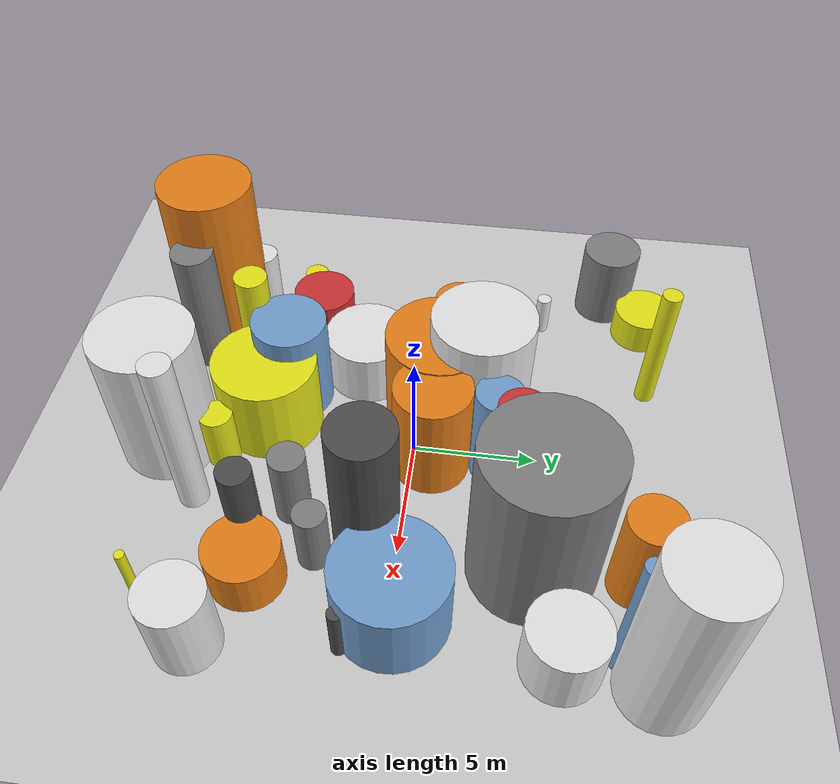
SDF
<?xml version='1.0'?>
<sdf version='1.6'>
  <world name='default'>
    <!-- Sun light -->
    <light name='sun' type='directional'>
      <cast_shadows>1</cast_shadows>
      <pose>0 0 10 0 0 0</pose>
      <diffuse>0.8 0.8 0.8 1</diffuse>
      <specular>0.2 0.2 0.2 1</specular>
      <attenuation>
        <range>1000</range>
        <constant>0.9</constant>
        <linear>0.01</linear>
        <quadratic>0.001</quadratic>
      </attenuation>
      <direction>-0.5 0.1 -0.9</direction>
    </light>

    <!-- Ground plane -->
    <model name='ground_plane'>
      <static>1</static>
      <link name='link'>
        <collision name='collision'>
          <geometry>
            <plane>
              <normal>0 0 1</normal>
              <size>100 100</size>
            </plane>
          </geometry>
          <surface>
            <contact>
              <collide_bitmask>65535</collide_bitmask>
              <ode/>
            </contact>
            <friction>
              <ode>
                <mu>100</mu>
                <mu2>50</mu2>
              </ode>
              <torsional><ode/></torsional>
            </friction>
            <bounce/>
          </surface>
          <max_contacts>10</max_contacts>
        </collision>
        <visual name='visual'>
          <cast_shadows>0</cast_shadows>
          <geometry>
            <plane>
              <normal>0 0 1</normal>
              <size>100 100</size>
            </plane>
          </geometry>
          <material>
            <script>
              <uri>file://media/materials/scripts/gazebo.material</uri>
              <n>Gazebo/Grey</n>
            </script>
          </material>
        </visual>
      </link>
    </model>

    <!-- Environment -->
    <magnetic_field>6e-06 2.3e-05 -4.2e-05</magnetic_field>
    <atmosphere type='adiabatic'/>
    <physics name='default_physics' default='0' type='ode'>
      <gravity>0 0 -9.8</gravity>
      <max_step_size>0.004</max_step_size>
      <real_time_factor>1</real_time_factor>
      <real_time_update_rate>250</real_time_update_rate>
    </physics>
    <scene>
      <ambient>0.4 0.4 0.4 1</ambient>
      <background>0.7 0.7 0.7 1</background>
      <shadows>1</shadows>
    </scene>
    <wind/>
    <spherical_coordinates>
      <surface_model>EARTH_WGS84</surface_model>
      <latitude_deg>0</latitude_deg>
      <longitude_deg>0</longitude_deg>
      <elevation>0</elevation>
      <heading_deg>0</heading_deg>
    </spherical_coordinates>

    <!-- ============ OBSTACLES (38) ============ -->
    <model name='obs_00'>
      <static>1</static>
      <link name='link'>
        <visual name='visual'>
          <geometry>
            <cylinder>
              <radius>1.4660</radius>
              <length>2.0625</length>
            </cylinder>
          </geometry>
          <material>
            <script>
              <n>Gazebo/Orange</n>
              <uri>file://media/materials/scripts/gazebo.material</uri>
            </script>
            <ambient>0.9 0.5 0.1 1</ambient>
          </material>
        </visual>
        <collision name='collision'>
          <geometry>
            <cylinder>
              <radius>1.4660</radius>
              <length>2.0625</length>
            </cylinder>
          </geometry>
          <max_contacts>10</max_contacts>
          <surface>
            <contact><ode/></contact>
            <bounce/>
            <friction>
              <ode><mu>1</mu><mu2>1</mu2></ode>
              <torsional><ode/></torsional>
            </friction>
          </surface>
        </collision>
      </link>
      <pose>6.7466 -5.3448 1.0313 0 0 1.9704</pose>
    </model>

    <model name='obs_01'>
      <static>1</static>
      <link name='link'>
        <visual name='visual'>
          <geometry>
            <cylinder>
              <radius>0.9177</radius>
              <length>6.1148</length>
            </cylinder>
          </geometry>
          <material>
            <script>
              <n>Gazebo/Red</n>
              <uri>file://media/materials/scripts/gazebo.material</uri>
            </script>
            <ambient>0.8 0.2 0.2 1</ambient>
          </material>
        </visual>
        <collision name='collision'>
          <geometry>
            <cylinder>
              <radius>0.9177</radius>
              <length>6.1148</length>
            </cylinder>
          </geometry>
          <max_contacts>10</max_contacts>
          <surface>
            <contact><ode/></contact>
            <bounce/>
            <friction>
              <ode><mu>1</mu><mu2>1</mu2></ode>
              <torsional><ode/></torsional>
            </friction>
          </surface>
        </collision>
      </link>
      <pose>2.4649 4.1118 3.0574 0 0 1.5373</pose>
    </model>

    <model name='obs_02'>
      <static>1</static>
      <link name='link'>
        <visual name='visual'>
          <geometry>
            <cylinder>
              <radius>1.2671</radius>
              <length>3.5289</length>
            </cylinder>
          </geometry>
          <material>
            <script>
              <n>Gazebo/White</n>
              <uri>file://media/materials/scripts/gazebo.material</uri>
            </script>
            <ambient>0.9 0.9 0.9 1</ambient>
          </material>
        </visual>
        <collision name='collision'>
          <geometry>
            <cylinder>
              <radius>1.2671</radius>
              <length>3.5289</length>
            </cylinder>
          </geometry>
          <max_contacts>10</max_contacts>
          <surface>
            <contact><ode/></contact>
            <bounce/>
            <friction>
              <ode><mu>1</mu><mu2>1</mu2></ode>
              <torsional><ode/></torsional>
            </friction>
          </surface>
        </collision>
      </link>
      <pose>9.5815 -6.7864 1.7644 0 0 2.6313</pose>
    </model>

    <model name='obs_03'>
      <static>1</static>
      <link name='link'>
        <visual name='visual'>
          <geometry>
            <cylinder>
              <radius>1.0558</radius>
              <length>4.3520</length>
            </cylinder>
          </geometry>
          <material>
            <script>
              <n>Gazebo/Orange</n>
              <uri>file://media/materials/scripts/gazebo.material</uri>
            </script>
            <ambient>0.9 0.5 0.1 1</ambient>
          </material>
        </visual>
        <collision name='collision'>
          <geometry>
            <cylinder>
              <radius>1.0558</radius>
              <length>4.3520</length>
            </cylinder>
          </geometry>
          <max_contacts>10</max_contacts>
          <surface>
            <contact><ode/></contact>
            <bounce/>
            <friction>
              <ode><mu>1</mu><mu2>1</mu2></ode>
              <torsional><ode/></torsional>
            </friction>
          </surface>
        </collision>
      </link>
      <pose>5.2458 8.8546 2.1760 0 0 1.1949</pose>
    </model>

    <model name='obs_04'>
      <static>1</static>
      <link name='link'>
        <visual name='visual'>
          <geometry>
            <cylinder>
              <radius>0.9243</radius>
              <length>1.9030</length>
            </cylinder>
          </geometry>
          <material>
            <script>
              <n>Gazebo/Yellow</n>
              <uri>file://media/materials/scripts/gazebo.material</uri>
            </script>
            <ambient>0.9 0.9 0.1 1</ambient>
          </material>
        </visual>
        <collision name='collision'>
          <geometry>
            <cylinder>
              <radius>0.9243</radius>
              <length>1.9030</length>
            </cylinder>
          </geometry>
          <max_contacts>10</max_contacts>
          <surface>
            <contact><ode/></contact>
            <bounce/>
            <friction>
              <ode><mu>1</mu><mu2>1</mu2></ode>
              <torsional><ode/></torsional>
            </friction>
          </surface>
        </collision>
      </link>
      <pose>2.7974 6.0578 0.9515 0 0 2.6466</pose>
    </model>

    <model name='obs_05'>
      <static>1</static>
      <link name='link'>
        <visual name='visual'>
          <geometry>
            <cylinder>
              <radius>0.6804</radius>
              <length>2.6380</length>
            </cylinder>
          </geometry>
          <material>
            <script>
              <n>Gazebo/Yellow</n>
              <uri>file://media/materials/scripts/gazebo.material</uri>
            </script>
            <ambient>0.9 0.9 0.1 1</ambient>
          </material>
        </visual>
        <collision name='collision'>
          <geometry>
            <cylinder>
              <radius>0.6804</radius>
              <length>2.6380</length>
            </cylinder>
          </geometry>
          <max_contacts>10</max_contacts>
          <surface>
            <contact><ode/></contact>
            <bounce/>
            <friction>
              <ode><mu>1</mu><mu2>1</mu2></ode>
              <torsional><ode/></torsional>
            </friction>
          </surface>
        </collision>
      </link>
      <pose>1.3188 -7.6649 1.3190 0 0 3.0218</pose>
    </model>

    <model name='obs_06'>
      <static>1</static>
      <link name='link'>
        <visual name='visual'>
          <geometry>
            <cylinder>
              <radius>1.2288</radius>
              <length>3.3869</length>
            </cylinder>
          </geometry>
          <material>
            <script>
              <n>Gazebo/Grey</n>
              <uri>file://media/materials/scripts/gazebo.material</uri>
            </script>
            <ambient>0.5 0.5 0.5 1</ambient>
          </material>
        </visual>
        <collision name='collision'>
          <geometry>
            <cylinder>
              <radius>1.2288</radius>
              <length>3.3869</length>
            </cylinder>
          </geometry>
          <max_contacts>10</max_contacts>
          <surface>
            <contact><ode/></contact>
            <bounce/>
            <friction>
              <ode><mu>1</mu><mu2>1</mu2></ode>
              <torsional><ode/></torsional>
            </friction>
          </surface>
        </collision>
      </link>
      <pose>-9.7942 7.7721 1.6935 0 0 2.6940</pose>
    </model>

    <model name='obs_07'>
      <static>1</static>
      <link name='link'>
        <visual name='visual'>
          <geometry>
            <cylinder>
              <radius>1.4955</radius>
              <length>2.7049</length>
            </cylinder>
          </geometry>
          <material>
            <script>
              <n>Gazebo/White</n>
              <uri>file://media/materials/scripts/gazebo.material</uri>
            </script>
            <ambient>0.9 0.9 0.9 1</ambient>
          </material>
        </visual>
        <collision name='collision'>
          <geometry>
            <cylinder>
              <radius>1.4955</radius>
              <length>2.7049</length>
            </cylinder>
          </geometry>
          <max_contacts>10</max_contacts>
          <surface>
            <contact><ode/></contact>
            <bounce/>
            <friction>
              <ode><mu>1</mu><mu2>1</mu2></ode>
              <torsional><ode/></torsional>
            </friction>
          </surface>
        </collision>
      </link>
      <pose>8.7542 6.2230 1.3525 0 0 0.1269</pose>
    </model>

    <model name='obs_08'>
      <static>1</static>
      <link name='link'>
        <visual name='visual'>
          <geometry>
            <cylinder>
              <radius>2.1304</radius>
              <length>3.5829</length>
            </cylinder>
          </geometry>
          <material>
            <script>
              <n>Gazebo/Yellow</n>
              <uri>file://media/materials/scripts/gazebo.material</uri>
            </script>
            <ambient>0.9 0.9 0.1 1</ambient>
          </material>
        </visual>
        <collision name='collision'>
          <geometry>
            <cylinder>
              <radius>2.1304</radius>
              <length>3.5829</length>
            </cylinder>
          </geometry>
          <max_contacts>10</max_contacts>
          <surface>
            <contact><ode/></contact>
            <bounce/>
            <friction>
              <ode><mu>1</mu><mu2>1</mu2></ode>
              <torsional><ode/></torsional>
            </friction>
          </surface>
        </collision>
      </link>
      <pose>-0.8358 -6.1302 1.7915 0 0 0.1200</pose>
    </model>

    <model name='obs_09'>
      <static>1</static>
      <link name='link'>
        <visual name='visual'>
          <geometry>
            <cylinder>
              <radius>0.5277</radius>
              <length>1.3679</length>
            </cylinder>
          </geometry>
          <material>
            <script>
              <n>Gazebo/Yellow</n>
              <uri>file://media/materials/scripts/gazebo.material</uri>
            </script>
            <ambient>0.9 0.9 0.1 1</ambient>
          </material>
        </visual>
        <collision name='collision'>
          <geometry>
            <cylinder>
              <radius>0.5277</radius>
              <length>1.3679</length>
            </cylinder>
          </geometry>
          <max_contacts>10</max_contacts>
          <surface>
            <contact><ode/></contact>
            <bounce/>
            <friction>
              <ode><mu>1</mu><mu2>1</mu2></ode>
              <torsional><ode/></torsional>
            </friction>
          </surface>
        </collision>
      </link>
      <pose>-8.8280 -5.7243 0.6840 0 0 2.7296</pose>
    </model>

    <model name='obs_10'>
      <static>1</static>
      <link name='link'>
        <visual name='visual'>
          <geometry>
            <cylinder>
              <radius>0.7177</radius>
              <length>3.4157</length>
            </cylinder>
          </geometry>
          <material>
            <script>
              <n>Gazebo/Grey</n>
              <uri>file://media/materials/scripts/gazebo.material</uri>
            </script>
            <ambient>0.5 0.5 0.5 1</ambient>
          </material>
        </visual>
        <collision name='collision'>
          <geometry>
            <cylinder>
              <radius>0.7177</radius>
              <length>3.4157</length>
            </cylinder>
          </geometry>
          <max_contacts>10</max_contacts>
          <surface>
            <contact><ode/></contact>
            <bounce/>
            <friction>
              <ode><mu>1</mu><mu2>1</mu2></ode>
              <torsional><ode/></torsional>
            </friction>
          </surface>
        </collision>
      </link>
      <pose>3.5871 -4.2548 1.7078 0 0 1.3245</pose>
    </model>

    <model name='obs_11'>
      <static>1</static>
      <link name='link'>
        <visual name='visual'>
          <geometry>
            <cylinder>
              <radius>1.5355</radius>
              <length>4.4334</length>
            </cylinder>
          </geometry>
          <material>
            <script>
              <n>Gazebo/Blue</n>
              <uri>file://media/materials/scripts/gazebo.material</uri>
            </script>
            <ambient>0.447 0.624 0.812 1</ambient>
          </material>
        </visual>
        <collision name='collision'>
          <geometry>
            <cylinder>
              <radius>1.5355</radius>
              <length>4.4334</length>
            </cylinder>
          </geometry>
          <max_contacts>10</max_contacts>
          <surface>
            <contact><ode/></contact>
            <bounce/>
            <friction>
              <ode><mu>1</mu><mu2>1</mu2></ode>
              <torsional><ode/></torsional>
            </friction>
          </surface>
        </collision>
      </link>
      <pose>-2.3828 -5.3779 2.2167 0 0 1.5946</pose>
    </model>

    <model name='obs_12'>
      <static>1</static>
      <link name='link'>
        <visual name='visual'>
          <geometry>
            <cylinder>
              <radius>1.5477</radius>
              <length>4.6152</length>
            </cylinder>
          </geometry>
          <material>
            <script>
              <n>Gazebo/Orange</n>
              <uri>file://media/materials/scripts/gazebo.material</uri>
            </script>
            <ambient>0.9 0.5 0.1 1</ambient>
          </material>
        </visual>
        <collision name='collision'>
          <geometry>
            <cylinder>
              <radius>1.5477</radius>
              <length>4.6152</length>
            </cylinder>
          </geometry>
          <max_contacts>10</max_contacts>
          <surface>
            <contact><ode/></contact>
            <bounce/>
            <friction>
              <ode><mu>1</mu><mu2>1</mu2></ode>
              <torsional><ode/></torsional>
            </friction>
          </surface>
        </collision>
      </link>
      <pose>0.6196 0.7949 2.3076 0 0 0.3707</pose>
    </model>

    <model name='obs_13'>
      <static>1</static>
      <link name='link'>
        <visual name='visual'>
          <geometry>
            <cylinder>
              <radius>2.0696</radius>
              <length>5.7380</length>
            </cylinder>
          </geometry>
          <material>
            <script>
              <n>Gazebo/White</n>
              <uri>file://media/materials/scripts/gazebo.material</uri>
            </script>
            <ambient>0.9 0.9 0.9 1</ambient>
          </material>
        </visual>
        <collision name='collision'>
          <geometry>
            <cylinder>
              <radius>2.0696</radius>
              <length>5.7380</length>
            </cylinder>
          </geometry>
          <max_contacts>10</max_contacts>
          <surface>
            <contact><ode/></contact>
            <bounce/>
            <friction>
              <ode><mu>1</mu><mu2>1</mu2></ode>
              <torsional><ode/></torsional>
            </friction>
          </surface>
        </collision>
      </link>
      <pose>-2.1908 2.4331 2.8690 0 0 0.1522</pose>
    </model>

    <model name='obs_14'>
      <static>1</static>
      <link name='link'>
        <visual name='visual'>
          <geometry>
            <cylinder>
              <radius>1.2749</radius>
              <length>1.4775</length>
            </cylinder>
          </geometry>
          <material>
            <script>
              <n>Gazebo/Yellow</n>
              <uri>file://media/materials/scripts/gazebo.material</uri>
            </script>
            <ambient>0.9 0.9 0.1 1</ambient>
          </material>
        </visual>
        <collision name='collision'>
          <geometry>
            <cylinder>
              <radius>1.2749</radius>
              <length>1.4775</length>
            </cylinder>
          </geometry>
          <max_contacts>10</max_contacts>
          <surface>
            <contact><ode/></contact>
            <bounce/>
            <friction>
              <ode><mu>1</mu><mu2>1</mu2></ode>
              <torsional><ode/></torsional>
            </friction>
          </surface>
        </collision>
      </link>
      <pose>-8.1361 9.4756 0.7387 0 0 1.0366</pose>
    </model>

    <model name='obs_15'>
      <static>1</static>
      <link name='link'>
        <visual name='visual'>
          <geometry>
            <cylinder>
              <radius>1.9514</radius>
              <length>7.6856</length>
            </cylinder>
          </geometry>
          <material>
            <script>
              <n>Gazebo/Orange</n>
              <uri>file://media/materials/scripts/gazebo.material</uri>
            </script>
            <ambient>0.9 0.5 0.1 1</ambient>
          </material>
        </visual>
        <collision name='collision'>
          <geometry>
            <cylinder>
              <radius>1.9514</radius>
              <length>7.6856</length>
            </cylinder>
          </geometry>
          <max_contacts>10</max_contacts>
          <surface>
            <contact><ode/></contact>
            <bounce/>
            <friction>
              <ode><mu>1</mu><mu2>1</mu2></ode>
              <torsional><ode/></torsional>
            </friction>
          </surface>
        </collision>
      </link>
      <pose>-6.5328 -9.4663 3.8428 0 0 2.2898</pose>
    </model>

    <model name='obs_16'>
      <static>1</static>
      <link name='link'>
        <visual name='visual'>
          <geometry>
            <cylinder>
              <radius>0.5953</radius>
              <length>7.5813</length>
            </cylinder>
          </geometry>
          <material>
            <script>
              <n>Gazebo/White</n>
              <uri>file://media/materials/scripts/gazebo.material</uri>
            </script>
            <ambient>0.9 0.9 0.9 1</ambient>
          </material>
        </visual>
        <collision name='collision'>
          <geometry>
            <cylinder>
              <radius>0.5953</radius>
              <length>7.5813</length>
            </cylinder>
          </geometry>
          <max_contacts>10</max_contacts>
          <surface>
            <contact><ode/></contact>
            <bounce/>
            <friction>
              <ode><mu>1</mu><mu2>1</mu2></ode>
              <torsional><ode/></torsional>
            </friction>
          </surface>
        </collision>
      </link>
      <pose>3.4599 -8.3343 3.7907 0 0 2.5907</pose>
    </model>

    <model name='obs_17'>
      <static>1</static>
      <link name='link'>
        <visual name='visual'>
          <geometry>
            <cylinder>
              <radius>1.2437</radius>
              <length>7.3021</length>
            </cylinder>
          </geometry>
          <material>
            <script>
              <n>Gazebo/DarkGrey</n>
              <uri>file://media/materials/scripts/gazebo.material</uri>
            </script>
            <ambient>0.3 0.3 0.3 1</ambient>
          </material>
        </visual>
        <collision name='collision'>
          <geometry>
            <cylinder>
              <radius>1.2437</radius>
              <length>7.3021</length>
            </cylinder>
          </geometry>
          <max_contacts>10</max_contacts>
          <surface>
            <contact><ode/></contact>
            <bounce/>
            <friction>
              <ode><mu>1</mu><mu2>1</mu2></ode>
              <torsional><ode/></torsional>
            </friction>
          </surface>
        </collision>
      </link>
      <pose>5.1239 -1.0861 3.6510 0 0 1.3695</pose>
    </model>

    <model name='obs_18'>
      <static>1</static>
      <link name='link'>
        <visual name='visual'>
          <geometry>
            <cylinder>
              <radius>2.4856</radius>
              <length>7.0386</length>
            </cylinder>
          </geometry>
          <material>
            <script>
              <n>Gazebo/Grey</n>
              <uri>file://media/materials/scripts/gazebo.material</uri>
            </script>
            <ambient>0.5 0.5 0.5 1</ambient>
          </material>
        </visual>
        <collision name='collision'>
          <geometry>
            <cylinder>
              <radius>2.4856</radius>
              <length>7.0386</length>
            </cylinder>
          </geometry>
          <max_contacts>10</max_contacts>
          <surface>
            <contact><ode/></contact>
            <bounce/>
            <friction>
              <ode><mu>1</mu><mu2>1</mu2></ode>
              <torsional><ode/></torsional>
            </friction>
          </surface>
        </collision>
      </link>
      <pose>4.9660 5.0551 3.5193 0 0 1.0270</pose>
    </model>

    <model name='obs_19'>
      <static>1</static>
      <link name='link'>
        <visual name='visual'>
          <geometry>
            <cylinder>
              <radius>1.6266</radius>
              <length>7.9964</length>
            </cylinder>
          </geometry>
          <material>
            <script>
              <n>Gazebo/White</n>
              <uri>file://media/materials/scripts/gazebo.material</uri>
            </script>
            <ambient>0.9 0.9 0.9 1</ambient>
          </material>
        </visual>
        <collision name='collision'>
          <geometry>
            <cylinder>
              <radius>1.6266</radius>
              <length>7.9964</length>
            </cylinder>
          </geometry>
          <max_contacts>10</max_contacts>
          <surface>
            <contact><ode/></contact>
            <bounce/>
            <friction>
              <ode><mu>1</mu><mu2>1</mu2></ode>
              <torsional><ode/></torsional>
            </friction>
          </surface>
        </collision>
      </link>
      <pose>9.1492 9.5666 3.9982 0 0 0.2489</pose>
    </model>

    <model name='obs_20'>
      <static>1</static>
      <link name='link'>
        <visual name='visual'>
          <geometry>
            <cylinder>
              <radius>0.9462</radius>
              <length>4.5367</length>
            </cylinder>
          </geometry>
          <material>
            <script>
              <n>Gazebo/Blue</n>
              <uri>file://media/materials/scripts/gazebo.material</uri>
            </script>
            <ambient>0.447 0.624 0.812 1</ambient>
          </material>
        </visual>
        <collision name='collision'>
          <geometry>
            <cylinder>
              <radius>0.9462</radius>
              <length>4.5367</length>
            </cylinder>
          </geometry>
          <max_contacts>10</max_contacts>
          <surface>
            <contact><ode/></contact>
            <bounce/>
            <friction>
              <ode><mu>1</mu><mu2>1</mu2></ode>
              <torsional><ode/></torsional>
            </friction>
          </surface>
        </collision>
      </link>
      <pose>0.4978 3.2943 2.2684 0 0 2.5815</pose>
    </model>

    <model name='obs_21'>
      <static>1</static>
      <link name='link'>
        <visual name='visual'>
          <geometry>
            <cylinder>
              <radius>0.3967</radius>
              <length>5.8218</length>
            </cylinder>
          </geometry>
          <material>
            <script>
              <n>Gazebo/Yellow</n>
              <uri>file://media/materials/scripts/gazebo.material</uri>
            </script>
            <ambient>0.9 0.9 0.1 1</ambient>
          </material>
        </visual>
        <collision name='collision'>
          <geometry>
            <cylinder>
              <radius>0.3967</radius>
              <length>5.8218</length>
            </cylinder>
          </geometry>
          <max_contacts>10</max_contacts>
          <surface>
            <contact><ode/></contact>
            <bounce/>
            <friction>
              <ode><mu>1</mu><mu2>1</mu2></ode>
              <torsional><ode/></torsional>
            </friction>
          </surface>
        </collision>
      </link>
      <pose>-4.2645 9.5664 2.9109 0 0 0.8009</pose>
    </model>

    <model name='obs_22'>
      <static>1</static>
      <link name='link'>
        <visual name='visual'>
          <geometry>
            <cylinder>
              <radius>0.6594</radius>
              <length>4.3492</length>
            </cylinder>
          </geometry>
          <material>
            <script>
              <n>Gazebo/DarkGrey</n>
              <uri>file://media/materials/scripts/gazebo.material</uri>
            </script>
            <ambient>0.3 0.3 0.3 1</ambient>
          </material>
        </visual>
        <collision name='collision'>
          <geometry>
            <cylinder>
              <radius>0.6594</radius>
              <length>4.3492</length>
            </cylinder>
          </geometry>
          <max_contacts>10</max_contacts>
          <surface>
            <contact><ode/></contact>
            <bounce/>
            <friction>
              <ode><mu>1</mu><mu2>1</mu2></ode>
              <torsional><ode/></torsional>
            </friction>
          </surface>
        </collision>
      </link>
      <pose>5.1356 -5.6802 2.1746 0 0 2.5931</pose>
    </model>

    <model name='obs_23'>
      <static>1</static>
      <link name='link'>
        <visual name='visual'>
          <geometry>
            <cylinder>
              <radius>0.6402</radius>
              <length>2.8697</length>
            </cylinder>
          </geometry>
          <material>
            <script>
              <n>Gazebo/Grey</n>
              <uri>file://media/materials/scripts/gazebo.material</uri>
            </script>
            <ambient>0.5 0.5 0.5 1</ambient>
          </material>
        </visual>
        <collision name='collision'>
          <geometry>
            <cylinder>
              <radius>0.6402</radius>
              <length>2.8697</length>
            </cylinder>
          </geometry>
          <max_contacts>10</max_contacts>
          <surface>
            <contact><ode/></contact>
            <bounce/>
            <friction>
              <ode><mu>1</mu><mu2>1</mu2></ode>
              <torsional><ode/></torsional>
            </friction>
          </surface>
        </collision>
      </link>
      <pose>5.5658 -3.0498 1.4348 0 0 0.1102</pose>
    </model>

    <model name='obs_24'>
      <static>1</static>
      <link name='link'>
        <visual name='visual'>
          <geometry>
            <cylinder>
              <radius>0.3051</radius>
              <length>1.7887</length>
            </cylinder>
          </geometry>
          <material>
            <script>
              <n>Gazebo/White</n>
              <uri>file://media/materials/scripts/gazebo.material</uri>
            </script>
            <ambient>0.9 0.9 0.9 1</ambient>
          </material>
        </visual>
        <collision name='collision'>
          <geometry>
            <cylinder>
              <radius>0.3051</radius>
              <length>1.7887</length>
            </cylinder>
          </geometry>
          <max_contacts>10</max_contacts>
          <surface>
            <contact><ode/></contact>
            <bounce/>
            <friction>
              <ode><mu>1</mu><mu2>1</mu2></ode>
              <torsional><ode/></torsional>
            </friction>
          </surface>
        </collision>
      </link>
      <pose>-7.8934 4.9580 0.8944 0 0 2.3316</pose>
    </model>

    <model name='obs_25'>
      <static>1</static>
      <link name='link'>
        <visual name='visual'>
          <geometry>
            <cylinder>
              <radius>2.1679</radius>
              <length>4.6742</length>
            </cylinder>
          </geometry>
          <material>
            <script>
              <n>Gazebo/Orange</n>
              <uri>file://media/materials/scripts/gazebo.material</uri>
            </script>
            <ambient>0.9 0.5 0.1 1</ambient>
          </material>
        </visual>
        <collision name='collision'>
          <geometry>
            <cylinder>
              <radius>2.1679</radius>
              <length>4.6742</length>
            </cylinder>
          </geometry>
          <max_contacts>10</max_contacts>
          <surface>
            <contact><ode/></contact>
            <bounce/>
            <friction>
              <ode><mu>1</mu><mu2>1</mu2></ode>
              <torsional><ode/></torsional>
            </friction>
          </surface>
        </collision>
      </link>
      <pose>-2.1118 0.7611 2.3371 0 0 2.4338</pose>
    </model>

    <model name='obs_26'>
      <static>1</static>
      <link name='link'>
        <visual name='visual'>
          <geometry>
            <cylinder>
              <radius>2.0215</radius>
              <length>6.3064</length>
            </cylinder>
          </geometry>
          <material>
            <script>
              <n>Gazebo/White</n>
              <uri>file://media/materials/scripts/gazebo.material</uri>
            </script>
            <ambient>0.9 0.9 0.9 1</ambient>
          </material>
        </visual>
        <collision name='collision'>
          <geometry>
            <cylinder>
              <radius>2.0215</radius>
              <length>6.3064</length>
            </cylinder>
          </geometry>
          <max_contacts>10</max_contacts>
          <surface>
            <contact><ode/></contact>
            <bounce/>
            <friction>
              <ode><mu>1</mu><mu2>1</mu2></ode>
              <torsional><ode/></torsional>
            </friction>
          </surface>
        </collision>
      </link>
      <pose>0.8933 -9.9951 3.1532 0 0 0.6678</pose>
    </model>

    <model name='obs_27'>
      <static>1</static>
      <link name='link'>
        <visual name='visual'>
          <geometry>
            <cylinder>
              <radius>1.8073</radius>
              <length>2.4326</length>
            </cylinder>
          </geometry>
          <material>
            <script>
              <n>Gazebo/White</n>
              <uri>file://media/materials/scripts/gazebo.material</uri>
            </script>
            <ambient>0.9 0.9 0.9 1</ambient>
          </material>
        </visual>
        <collision name='collision'>
          <geometry>
            <cylinder>
              <radius>1.8073</radius>
              <length>2.4326</length>
            </cylinder>
          </geometry>
          <max_contacts>10</max_contacts>
          <surface>
            <contact><ode/></contact>
            <bounce/>
            <friction>
              <ode><mu>1</mu><mu2>1</mu2></ode>
              <torsional><ode/></torsional>
            </friction>
          </surface>
        </collision>
      </link>
      <pose>-4.0913 -2.4891 1.2163 0 0 1.7122</pose>
    </model>

    <model name='obs_28'>
      <static>1</static>
      <link name='link'>
        <visual name='visual'>
          <geometry>
            <cylinder>
              <radius>2.1837</radius>
              <length>3.3882</length>
            </cylinder>
          </geometry>
          <material>
            <script>
              <n>Gazebo/Blue</n>
              <uri>file://media/materials/scripts/gazebo.material</uri>
            </script>
            <ambient>0.447 0.624 0.812 1</ambient>
          </material>
        </visual>
        <collision name='collision'>
          <geometry>
            <cylinder>
              <radius>2.1837</radius>
              <length>3.3882</length>
            </cylinder>
          </geometry>
          <max_contacts>10</max_contacts>
          <surface>
            <contact><ode/></contact>
            <bounce/>
            <friction>
              <ode><mu>1</mu><mu2>1</mu2></ode>
              <torsional><ode/></torsional>
            </friction>
          </surface>
        </collision>
      </link>
      <pose>7.6772 0.1753 1.6941 0 0 0.1786</pose>
    </model>

    <model name='obs_29'>
      <static>1</static>
      <link name='link'>
        <visual name='visual'>
          <geometry>
            <cylinder>
              <radius>0.1868</radius>
              <length>3.1759</length>
            </cylinder>
          </geometry>
          <material>
            <script>
              <n>Gazebo/Yellow</n>
              <uri>file://media/materials/scripts/gazebo.material</uri>
            </script>
            <ambient>0.9 0.9 0.1 1</ambient>
          </material>
        </visual>
        <collision name='collision'>
          <geometry>
            <cylinder>
              <radius>0.1868</radius>
              <length>3.1759</length>
            </cylinder>
          </geometry>
          <max_contacts>10</max_contacts>
          <surface>
            <contact><ode/></contact>
            <bounce/>
            <friction>
              <ode><mu>1</mu><mu2>1</mu2></ode>
              <torsional><ode/></torsional>
            </friction>
          </surface>
        </collision>
      </link>
      <pose>8.2157 -8.9888 1.5879 0 0 0.2454</pose>
    </model>

    <model name='obs_30'>
      <static>1</static>
      <link name='link'>
        <visual name='visual'>
          <geometry>
            <cylinder>
              <radius>0.2489</radius>
              <length>4.5437</length>
            </cylinder>
          </geometry>
          <material>
            <script>
              <n>Gazebo/White</n>
              <uri>file://media/materials/scripts/gazebo.material</uri>
            </script>
            <ambient>0.9 0.9 0.9 1</ambient>
          </material>
        </visual>
        <collision name='collision'>
          <geometry>
            <cylinder>
              <radius>0.2489</radius>
              <length>4.5437</length>
            </cylinder>
          </geometry>
          <max_contacts>10</max_contacts>
          <surface>
            <contact><ode/></contact>
            <bounce/>
            <friction>
              <ode><mu>1</mu><mu2>1</mu2></ode>
              <torsional><ode/></torsional>
            </friction>
          </surface>
        </collision>
      </link>
      <pose>-5.2620 1.9305 2.2718 0 0 2.4365</pose>
    </model>

    <model name='obs_31'>
      <static>1</static>
      <link name='link'>
        <visual name='visual'>
          <geometry>
            <cylinder>
              <radius>0.6600</radius>
              <length>3.4282</length>
            </cylinder>
          </geometry>
          <material>
            <script>
              <n>Gazebo/White</n>
              <uri>file://media/materials/scripts/gazebo.material</uri>
            </script>
            <ambient>0.9 0.9 0.9 1</ambient>
          </material>
        </visual>
        <collision name='collision'>
          <geometry>
            <cylinder>
              <radius>0.6600</radius>
              <length>3.4282</length>
            </cylinder>
          </geometry>
          <max_contacts>10</max_contacts>
          <surface>
            <contact><ode/></contact>
            <bounce/>
            <friction>
              <ode><mu>1</mu><mu2>1</mu2></ode>
              <torsional><ode/></torsional>
            </friction>
          </surface>
        </collision>
      </link>
      <pose>-7.4269 -7.7654 1.7141 0 0 1.9634</pose>
    </model>

    <model name='obs_32'>
      <static>1</static>
      <link name='link'>
        <visual name='visual'>
          <geometry>
            <cylinder>
              <radius>0.2933</radius>
              <length>2.5627</length>
            </cylinder>
          </geometry>
          <material>
            <script>
              <n>Gazebo/DarkGrey</n>
              <uri>file://media/materials/scripts/gazebo.material</uri>
            </script>
            <ambient>0.3 0.3 0.3 1</ambient>
          </material>
        </visual>
        <collision name='collision'>
          <geometry>
            <cylinder>
              <radius>0.2933</radius>
              <length>2.5627</length>
            </cylinder>
          </geometry>
          <max_contacts>10</max_contacts>
          <surface>
            <contact><ode/></contact>
            <bounce/>
            <friction>
              <ode><mu>1</mu><mu2>1</mu2></ode>
              <torsional><ode/></torsional>
            </friction>
          </surface>
        </collision>
      </link>
      <pose>9.1111 -1.4736 1.2814 0 0 2.1510</pose>
    </model>

    <model name='obs_33'>
      <static>1</static>
      <link name='link'>
        <visual name='visual'>
          <geometry>
            <cylinder>
              <radius>0.3583</radius>
              <length>6.4532</length>
            </cylinder>
          </geometry>
          <material>
            <script>
              <n>Gazebo/Blue</n>
              <uri>file://media/materials/scripts/gazebo.material</uri>
            </script>
            <ambient>0.447 0.624 0.812 1</ambient>
          </material>
        </visual>
        <collision name='collision'>
          <geometry>
            <cylinder>
              <radius>0.3583</radius>
              <length>6.4532</length>
            </cylinder>
          </geometry>
          <max_contacts>10</max_contacts>
          <surface>
            <contact><ode/></contact>
            <bounce/>
            <friction>
              <ode><mu>1</mu><mu2>1</mu2></ode>
              <torsional><ode/></torsional>
            </friction>
          </surface>
        </collision>
      </link>
      <pose>8.3892 8.2109 3.2266 0 0 1.6414</pose>
    </model>

    <model name='obs_34'>
      <static>1</static>
      <link name='link'>
        <visual name='visual'>
          <geometry>
            <cylinder>
              <radius>0.8829</radius>
              <length>5.8516</length>
            </cylinder>
          </geometry>
          <material>
            <script>
              <n>Gazebo/Grey</n>
              <uri>file://media/materials/scripts/gazebo.material</uri>
            </script>
            <ambient>0.5 0.5 0.5 1</ambient>
          </material>
        </visual>
        <collision name='collision'>
          <geometry>
            <cylinder>
              <radius>0.8829</radius>
              <length>5.8516</length>
            </cylinder>
          </geometry>
          <max_contacts>10</max_contacts>
          <surface>
            <contact><ode/></contact>
            <bounce/>
            <friction>
              <ode><mu>1</mu><mu2>1</mu2></ode>
              <torsional><ode/></torsional>
            </friction>
          </surface>
        </collision>
      </link>
      <pose>-4.3336 -9.6741 2.9258 0 0 0.3958</pose>
    </model>

    <model name='obs_35'>
      <static>1</static>
      <link name='link'>
        <visual name='visual'>
          <geometry>
            <cylinder>
              <radius>1.1280</radius>
              <length>2.1315</length>
            </cylinder>
          </geometry>
          <material>
            <script>
              <n>Gazebo/Orange</n>
              <uri>file://media/materials/scripts/gazebo.material</uri>
            </script>
            <ambient>0.9 0.5 0.1 1</ambient>
          </material>
        </visual>
        <collision name='collision'>
          <geometry>
            <cylinder>
              <radius>1.1280</radius>
              <length>2.1315</length>
            </cylinder>
          </geometry>
          <max_contacts>10</max_contacts>
          <surface>
            <contact><ode/></contact>
            <bounce/>
            <friction>
              <ode><mu>1</mu><mu2>1</mu2></ode>
              <torsional><ode/></torsional>
            </friction>
          </surface>
        </collision>
      </link>
      <pose>-7.0091 1.2263 1.0658 0 0 1.9060</pose>
    </model>

    <model name='obs_36'>
      <static>1</static>
      <link name='link'>
        <visual name='visual'>
          <geometry>
            <cylinder>
              <radius>0.6785</radius>
              <length>5.5418</length>
            </cylinder>
          </geometry>
          <material>
            <script>
              <n>Gazebo/Yellow</n>
              <uri>file://media/materials/scripts/gazebo.material</uri>
            </script>
            <ambient>0.9 0.9 0.1 1</ambient>
          </material>
        </visual>
        <collision name='collision'>
          <geometry>
            <cylinder>
              <radius>0.6785</radius>
              <length>5.5418</length>
            </cylinder>
          </geometry>
          <max_contacts>10</max_contacts>
          <surface>
            <contact><ode/></contact>
            <bounce/>
            <friction>
              <ode><mu>1</mu><mu2>1</mu2></ode>
              <torsional><ode/></torsional>
            </friction>
          </surface>
        </collision>
      </link>
      <pose>-3.4977 -7.0640 2.7709 0 0 0.2321</pose>
    </model>

    <model name='obs_37'>
      <static>1</static>
      <link name='link'>
        <visual name='visual'>
          <geometry>
            <cylinder>
              <radius>1.3251</radius>
              <length>2.2463</length>
            </cylinder>
          </geometry>
          <material>
            <script>
              <n>Gazebo/Red</n>
              <uri>file://media/materials/scripts/gazebo.material</uri>
            </script>
            <ambient>0.8 0.2 0.2 1</ambient>
          </material>
        </visual>
        <collision name='collision'>
          <geometry>
            <cylinder>
              <radius>1.3251</radius>
              <length>2.2463</length>
            </cylinder>
          </geometry>
          <max_contacts>10</max_contacts>
          <surface>
            <contact><ode/></contact>
            <bounce/>
            <friction>
              <ode><mu>1</mu><mu2>1</mu2></ode>
              <torsional><ode/></torsional>
            </friction>
          </surface>
        </collision>
      </link>
      <pose>-6.6522 -4.8841 1.1232 0 0 1.8720</pose>
    </model>

    <!-- GUI camera -->
    <gui fullscreen='0'>
      <camera name='user_camera'>
        <pose>-15 0 18 0 0.85 0.15</pose>
        <view_controller>orbit</view_controller>
        <projection_type>perspective</projection_type>
      </camera>
    </gui>
  </world>
</sdf>
